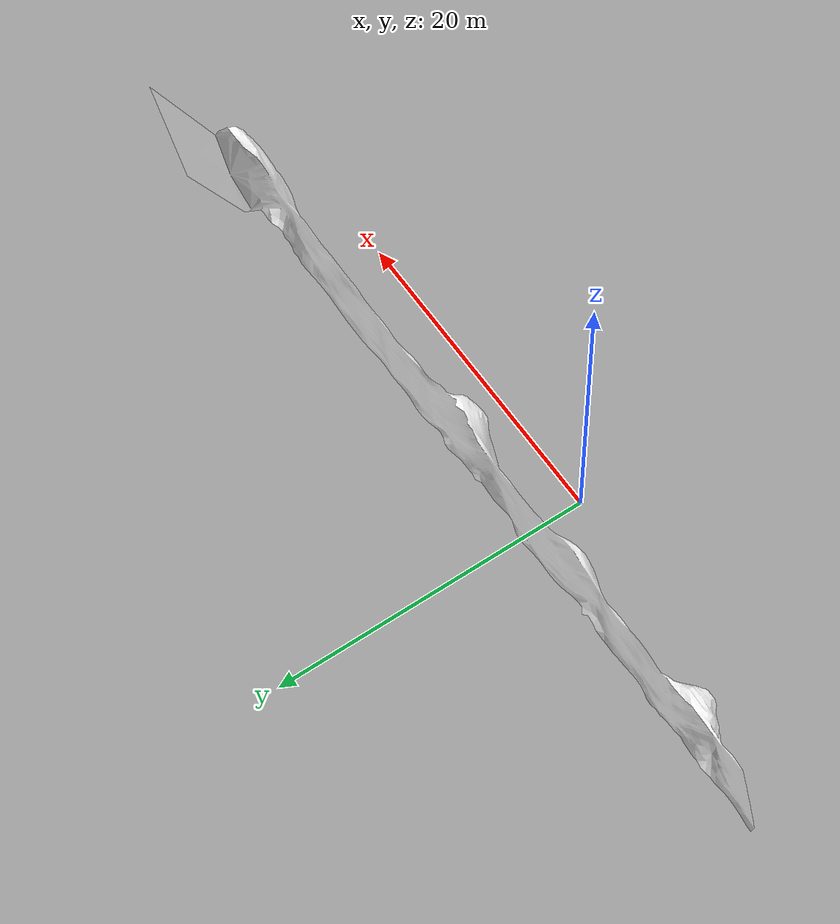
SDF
<?xml version="1.0"?>

<sdf version="1.5">
    <model name="wall">
	<static>true</static>
	<pose>5 5 5 0 0 0</pose>
	<link name="wall">
	    <visual name="visual">
		<pose>0 0 0 0 0 0</pose>
		<geometry>
		    <mesh>
		        <scale>1 1 1</scale>
			<uri>model://chalk_wall/meshes/chalk_quary.dae</uri>
		    </mesh>
		</geometry>
		<material>
          	    <script>
            	        <name>Gazebo/white</name>
            		<uri>file://media/materials/scripts/gazebo.material</uri>
          	    </script>
        	</material>
	    </visual>
	    <collision name="collision">
		<pose>0 0 0 0 0 0</pose>
		<geometry>
		    <mesh>
			<uri>model://chalk_wall/meshes/chalk_quary.dae</uri>
		    </mesh>
		</geometry>
	     </collision>
	</link>
    </model>
</sdf>
